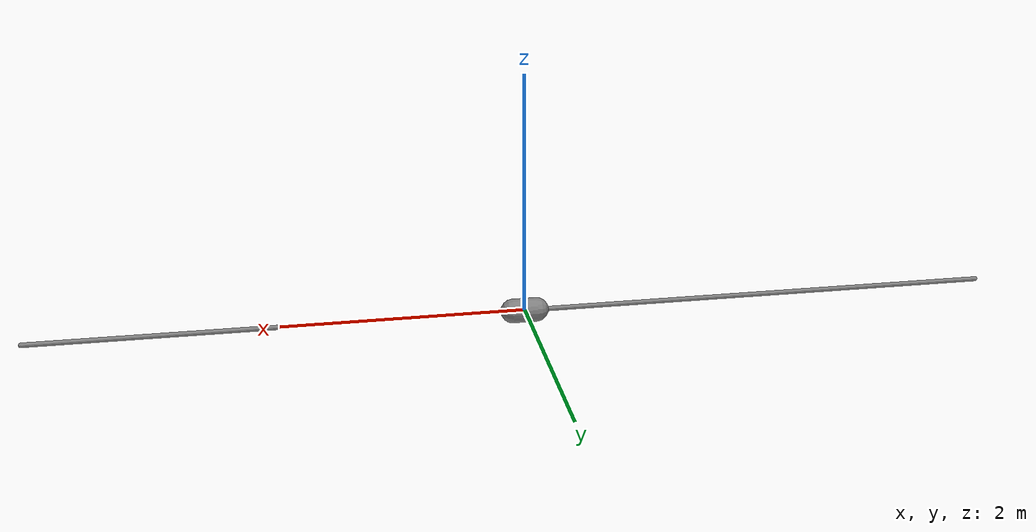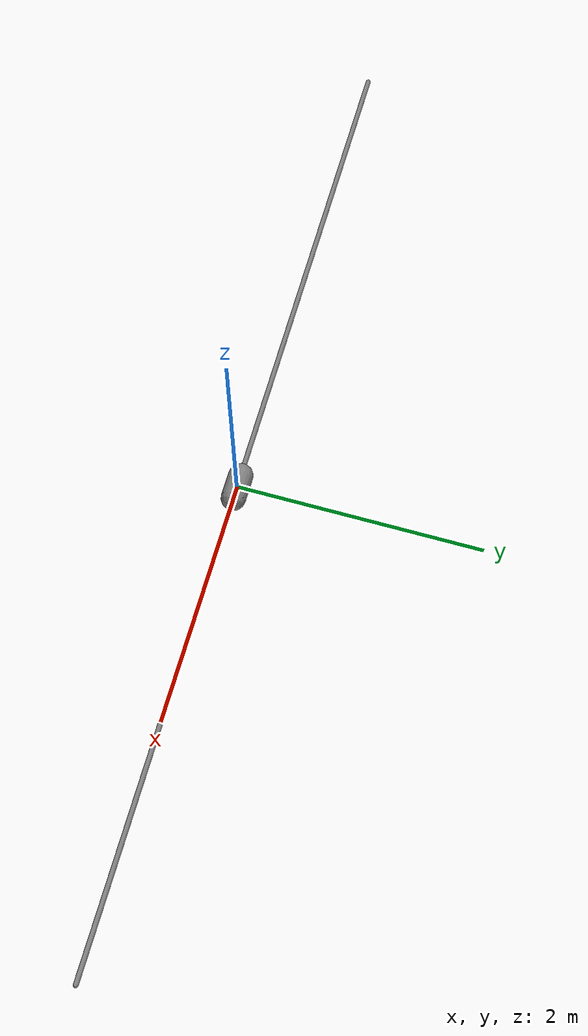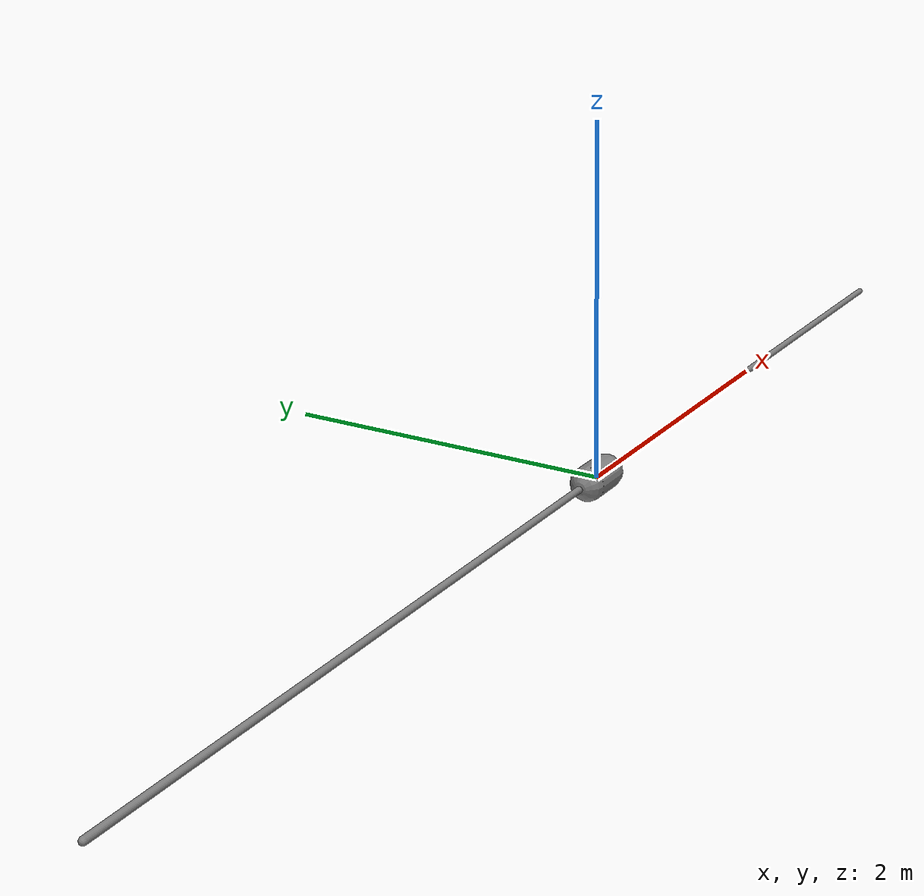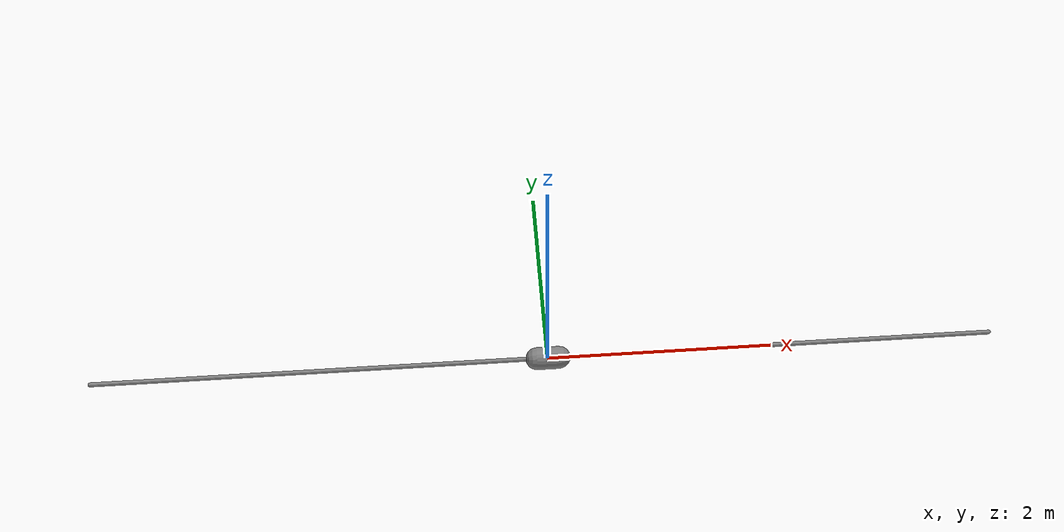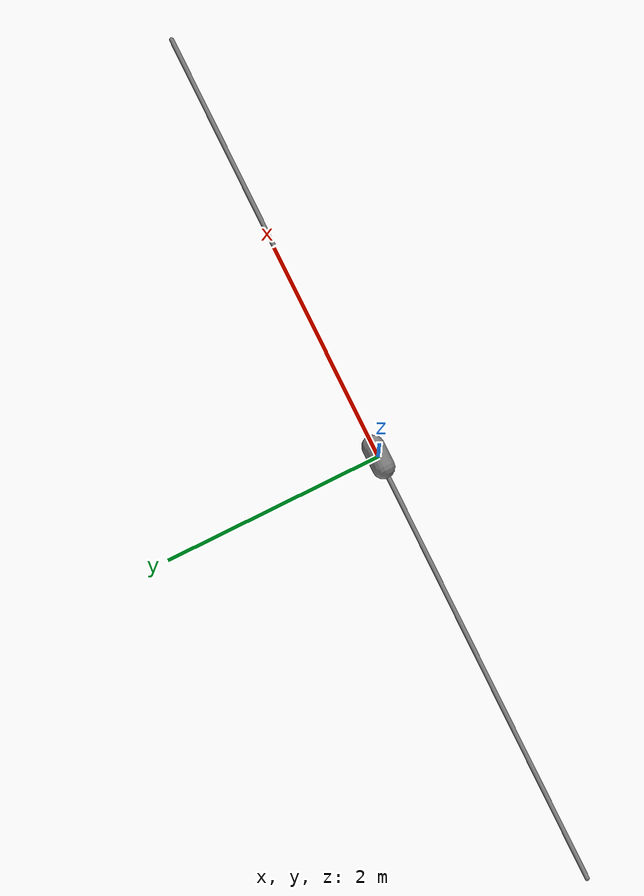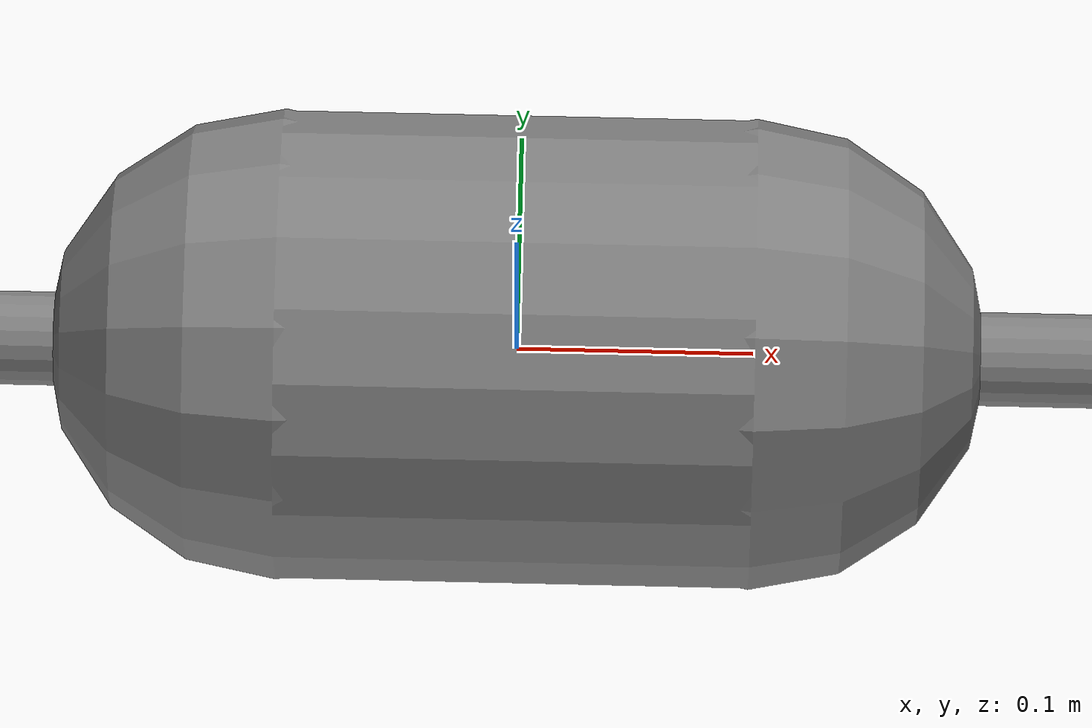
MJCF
<mujoco model="slider">
	<option timestep="0.002" iterations="1" ls_iterations="4" solver="Newton" gravity="0 0 -9.81">
		<flag eulerdamp="disable"/>
	</option>
	<default>
		<joint armature="0" damping="5"/>
		<geom contype="0" friction="1 0.1 0.1" />
		<motor ctrlrange="-1 1"/>
	</default>

	<worldbody>
		<geom name="rail" pos="0 0 0" quat="0.707 0 0.707 0" size="0.02 4" type="capsule"/>
		<body name="cart" pos="0 0 0">
			<joint axis="1 0 0" limited="true" name="slider" pos="0 0 0" range="-4 4" type="slide"/>
			<geom name="cart" pos="0 0 0" quat="0.707 0 0.707 0" size="0.1 0.1" type="capsule"/>
		</body>
	</worldbody>
	<actuator>
		<motor ctrllimited="true" gear="100" joint="slider" name="slide"/>
	</actuator>
</mujoco>
